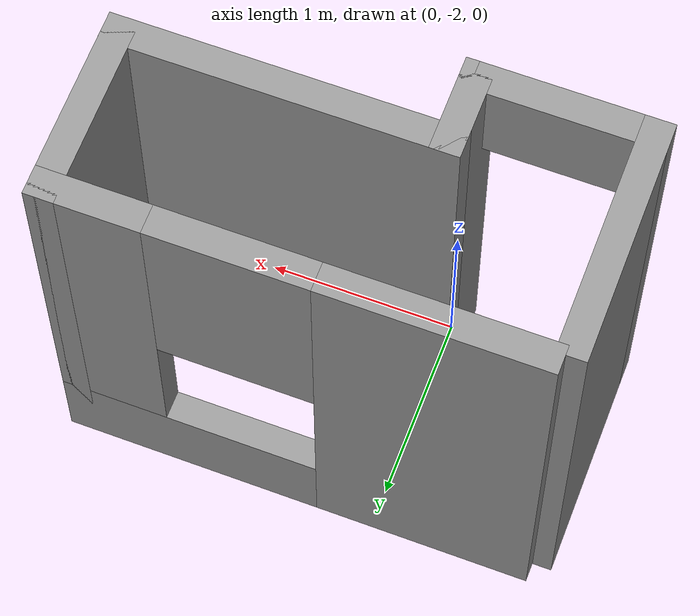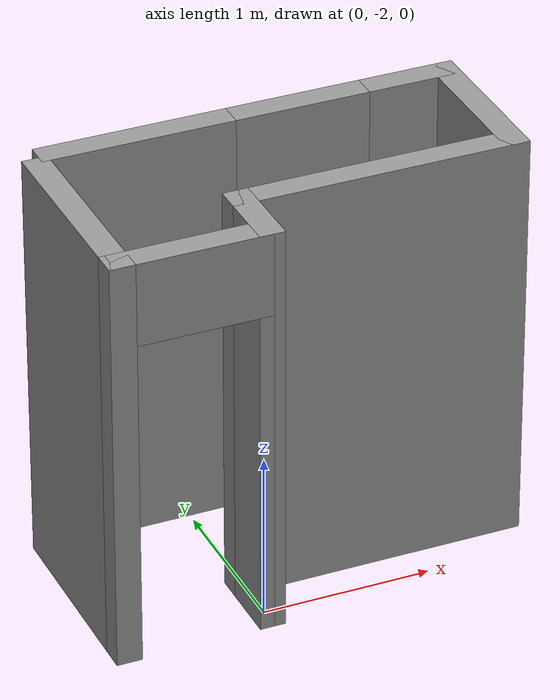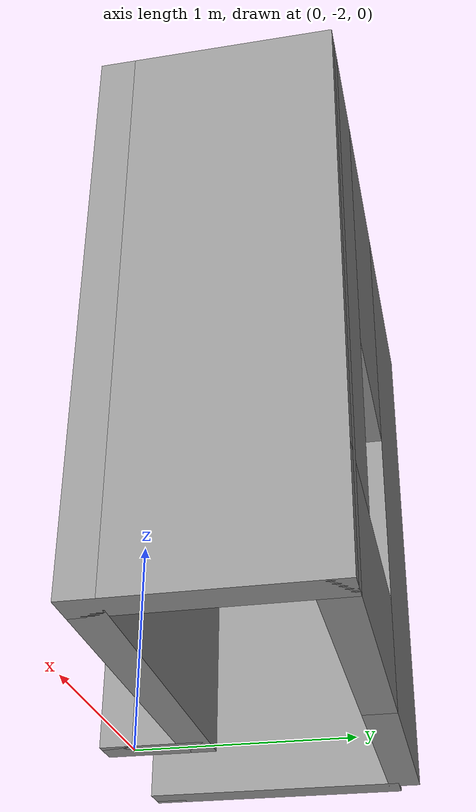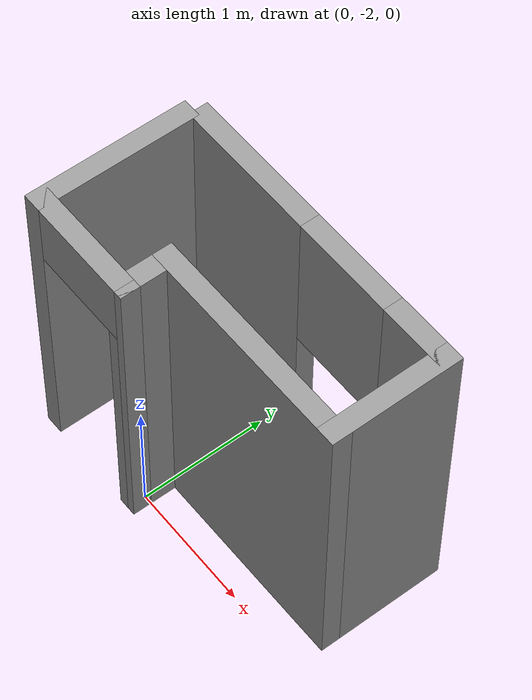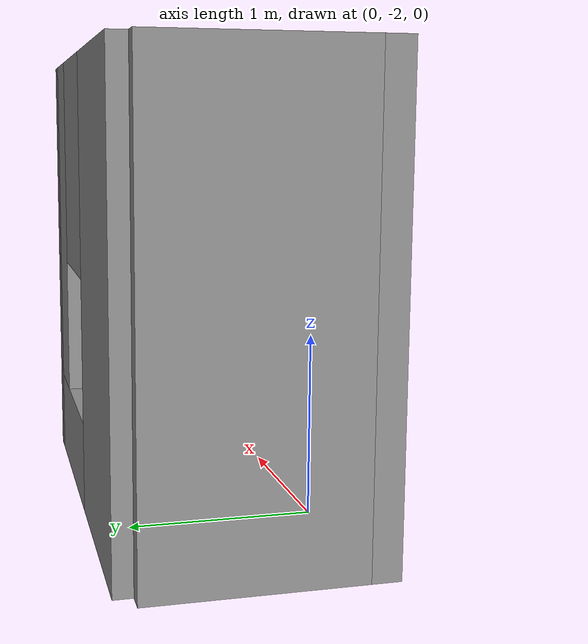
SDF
<?xml version='1.0'?>
<sdf version='1.7'>
  <model name='test__house'>
    <pose>0.365 -1.0725 0 0 -0 0</pose>
    <link name='Wall_0'>
      <pose>0.05 0.2025 0 0 -0 0</pose>
      <visual name='Wall_0_Visual_0'>
        <pose>-0.6825 0 1.25 0 -0 0</pose>
        <geometry>
          <box>
            <size>1.135 0.15 2.5</size>
          </box>
        </geometry>
        <material>
          <script>
            <uri>file://media/materials/scripts/gazebo.material</uri>
            <name>Gazebo/Grey</name>
          </script>
          <ambient>1 1 1 1</ambient>
        </material>
        <meta>
          <layer>0</layer>
        </meta>
      </visual>
      <collision name='Wall_0_Collision_0'>
        <geometry>
          <box>
            <size>1.135 0.15 2.5</size>
          </box>
        </geometry>
        <pose>-0.6825 0 1.25 0 -0 0</pose>
      </collision>
      <visual name='Wall_0_Visual_1'>
        <pose>0.5675 0 0.25 0 -0 0</pose>
        <geometry>
          <box>
            <size>1.365 0.15 0.5</size>
          </box>
        </geometry>
        <material>
          <script>
            <uri>file://media/materials/scripts/gazebo.material</uri>
            <name>Gazebo/Grey</name>
          </script>
          <ambient>1 1 1 1</ambient>
        </material>
        <meta>
          <layer>0</layer>
        </meta>
      </visual>
      <collision name='Wall_0_Collision_1'>
        <geometry>
          <box>
            <size>1.365 0.15 0.5</size>
          </box>
        </geometry>
        <pose>0.5675 0 0.25 0 -0 0</pose>
      </collision>
      <visual name='Wall_0_Visual_2'>
        <pose>0.9675 0 1.5 0 -0 0</pose>
        <geometry>
          <box>
            <size>0.565 0.15 2</size>
          </box>
        </geometry>
        <material>
          <script>
            <uri>file://media/materials/scripts/gazebo.material</uri>
            <name>Gazebo/Grey</name>
          </script>
          <ambient>1 1 1 1</ambient>
        </material>
        <meta>
          <layer>0</layer>
        </meta>
      </visual>
      <collision name='Wall_0_Collision_2'>
        <geometry>
          <box>
            <size>0.565 0.15 2</size>
          </box>
        </geometry>
        <pose>0.9675 0 1.5 0 -0 0</pose>
      </collision>
      <visual name='Wall_0_Visual_3'>
        <pose>0.285 0 1.9 0 -0 0</pose>
        <geometry>
          <box>
            <size>0.8 0.15 1.2</size>
          </box>
        </geometry>
        <material>
          <script>
            <uri>file://media/materials/scripts/gazebo.material</uri>
            <name>Gazebo/Grey</name>
          </script>
          <ambient>1 1 1 1</ambient>
        </material>
        <meta>
          <layer>0</layer>
        </meta>
      </visual>
      <collision name='Wall_0_Collision_3'>
        <geometry>
          <box>
            <size>0.8 0.15 1.2</size>
          </box>
        </geometry>
        <pose>0.285 0 1.9 0 -0 0</pose>
      </collision>
    </link>
    <link name='Wall_1'>
      <collision name='Wall_1_Collision'>
        <geometry>
          <box>
            <size>1 0.15 2.5</size>
          </box>
        </geometry>
        <pose>0 0 1.25 0 -0 0</pose>
      </collision>
      <visual name='Wall_1_Visual'>
        <pose>0 0 1.25 0 -0 0</pose>
        <geometry>
          <box>
            <size>1 0.15 2.5</size>
          </box>
        </geometry>
        <material>
          <script>
            <uri>file://media/materials/scripts/gazebo.material</uri>
            <name>Gazebo/Grey</name>
          </script>
          <ambient>1 1 1 1</ambient>
        </material>
        <meta>
          <layer>0</layer>
        </meta>
      </visual>
      <pose>1.225 -0.2225 0 0 -0 -1.5708</pose>
    </link>
    <link name='Wall_2'>
      <collision name='Wall_2_Collision'>
        <geometry>
          <box>
            <size>1.75 0.15 2.5</size>
          </box>
        </geometry>
        <pose>0 0 1.25 0 -0 0</pose>
      </collision>
      <visual name='Wall_2_Visual'>
        <pose>0 0 1.25 0 -0 0</pose>
        <geometry>
          <box>
            <size>1.75 0.15 2.5</size>
          </box>
        </geometry>
        <material>
          <script>
            <uri>file://media/materials/scripts/gazebo.material</uri>
            <name>Gazebo/Grey</name>
          </script>
          <ambient>1 1 1 1</ambient>
        </material>
        <meta>
          <layer>0</layer>
        </meta>
      </visual>
      <pose>0.425 -0.6475 0 0 -0 3.14159</pose>
    </link>
    <link name='Wall_3'>
      <collision name='Wall_3_Collision'>
        <geometry>
          <box>
            <size>0.5 0.15 2.5</size>
          </box>
        </geometry>
        <pose>0 0 1.25 0 -0 0</pose>
      </collision>
      <visual name='Wall_3_Visual'>
        <pose>0 0 1.25 0 -0 0</pose>
        <geometry>
          <box>
            <size>0.5 0.15 2.5</size>
          </box>
        </geometry>
        <material>
          <script>
            <uri>file://media/materials/scripts/gazebo.material</uri>
            <name>Gazebo/Grey</name>
          </script>
          <ambient>1 1 1 1</ambient>
        </material>
        <meta>
          <layer>0</layer>
        </meta>
      </visual>
      <pose>-0.375 -0.8225 0 0 -0 -1.5708</pose>
    </link>
    <link name='Wall_4'>
      <pose>-0.8 -0.9975 0 0 -0 3.14159</pose>
      <visual name='Wall_4_Visual_0'>
        <pose>-0.4675 0 1.25 0 -0 0</pose>
        <geometry>
          <box>
            <size>0.065 0.15 2.5</size>
          </box>
        </geometry>
        <material>
          <script>
            <uri>file://media/materials/scripts/gazebo.material</uri>
            <name>Gazebo/Grey</name>
          </script>
          <ambient>1 1 1 1</ambient>
        </material>
        <meta>
          <layer>0</layer>
        </meta>
      </visual>
      <collision name='Wall_4_Collision_0'>
        <geometry>
          <box>
            <size>0.065 0.15 2.5</size>
          </box>
        </geometry>
        <pose>-0.4675 0 1.25 0 -0 0</pose>
      </collision>
      <visual name='Wall_4_Visual_1'>
        <pose>0.4825 0 1.25 0 -0 0</pose>
        <geometry>
          <box>
            <size>0.035 0.15 2.5</size>
          </box>
        </geometry>
        <material>
          <script>
            <uri>file://media/materials/scripts/gazebo.material</uri>
            <name>Gazebo/Grey</name>
          </script>
          <ambient>1 1 1 1</ambient>
        </material>
        <meta>
          <layer>0</layer>
        </meta>
      </visual>
      <collision name='Wall_4_Collision_1'>
        <geometry>
          <box>
            <size>0.035 0.15 2.5</size>
          </box>
        </geometry>
        <pose>0.4825 0 1.25 0 -0 0</pose>
      </collision>
      <visual name='Wall_4_Visual_2'>
        <pose>0.015 0 2.25 0 -0 0</pose>
        <geometry>
          <box>
            <size>0.9 0.15 0.5</size>
          </box>
        </geometry>
        <material>
          <script>
            <uri>file://media/materials/scripts/gazebo.material</uri>
            <name>Gazebo/Grey</name>
          </script>
          <ambient>1 1 1 1</ambient>
        </material>
        <meta>
          <layer>0</layer>
        </meta>
      </visual>
      <collision name='Wall_4_Collision_2'>
        <geometry>
          <box>
            <size>0.9 0.15 0.5</size>
          </box>
        </geometry>
        <pose>0.015 0 2.25 0 -0 0</pose>
      </collision>
    </link>
    <link name='Wall_5'>
      <collision name='Wall_5_Collision'>
        <geometry>
          <box>
            <size>1.25 0.15 2.5</size>
          </box>
        </geometry>
        <pose>0 0 1.25 0 -0 0</pose>
      </collision>
      <visual name='Wall_5_Visual'>
        <pose>0 0 1.25 0 -0 0</pose>
        <geometry>
          <box>
            <size>1.25 0.15 2.5</size>
          </box>
        </geometry>
        <material>
          <script>
            <uri>file://media/materials/scripts/gazebo.material</uri>
            <name>Gazebo/Grey</name>
          </script>
          <ambient>1 1 1 1</ambient>
        </material>
        <meta>
          <layer>0</layer>
        </meta>
      </visual>
      <pose>-1.225 -0.4475 0 0 -0 1.5708</pose>
    </link>
    <static>1</static>
  </model>
</sdf>
